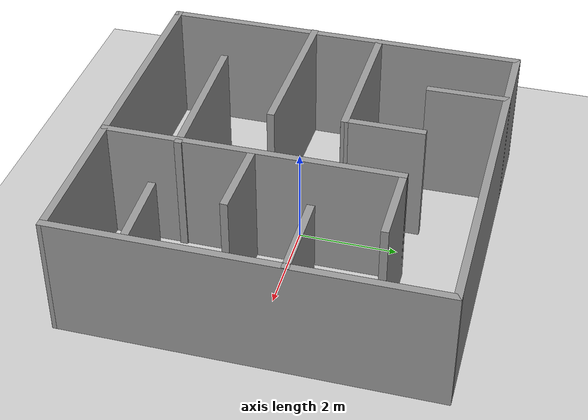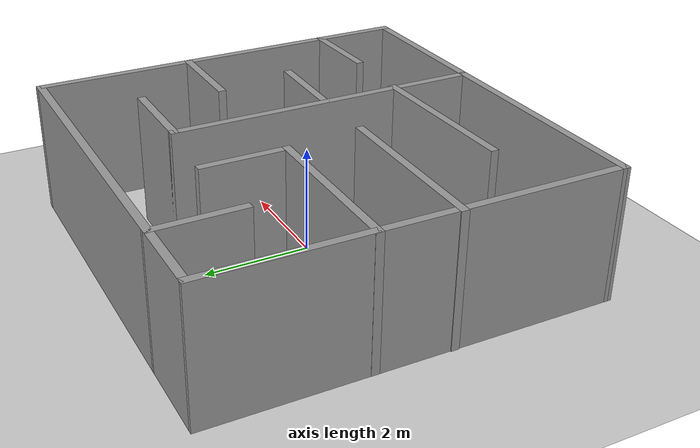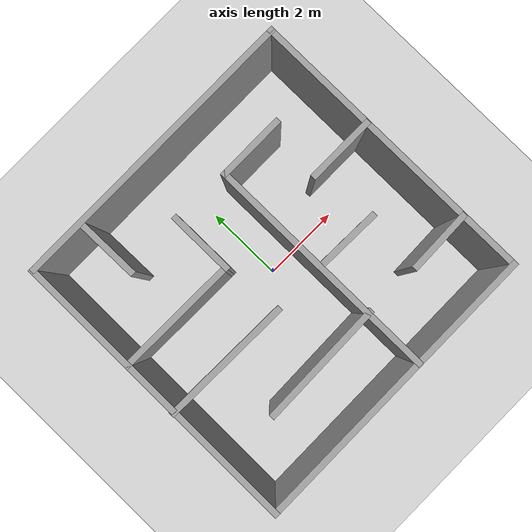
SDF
<sdf version="1.7">
 <world name="default">
  <light name="sun" type="directional">
   <pose>0 0 10 0 -0 0</pose>
   <diffuse>0.8 0.8 0.8 1</diffuse>
   <specular>0.2 0.2 0.2 1</specular>
   <attenuation>
    <range>1000</range>
    <constant>0.9</constant>
    <linear>0.01</linear>
    <quadratic>0.001</quadratic>
   </attenuation>
   <direction>-0.5 0.1 -0.9</direction>
   <spot><inner_angle>0</inner_angle><outer_angle>0</outer_angle><falloff>0</falloff></spot>
  </light>
  <model name="ground_plane">
   <static>1</static>
   <link name="link">
    <collision name="collision">
     <geometry><plane><normal>0 0 1</normal><size>100 100</size></plane></geometry>
     <surface><friction><ode><mu>100</mu><mu2>50</mu2></ode></friction></surface>
    </collision>
    <visual name="visual">
     <cast_shadows>0</cast_shadows>
     <geometry><plane><normal>0 0 1</normal><size>100 100</size></plane></geometry>
     <material>
      <script><uri>file://media/materials/scripts/gazebo.material</uri><name>Gazebo/Grey</name></script>
     </material>
    </visual>
   </link>
  </model>
  <gravity>0 0 -9.8</gravity>
  <magnetic_field>6e-06 2.3e-05 -4.2e-05</magnetic_field>
  <atmosphere type="adiabatic"/>
  <physics type="ode">
   <max_step_size>0.001</max_step_size>
   <real_time_factor>1</real_time_factor>
   <real_time_update_rate>1000</real_time_update_rate>
  </physics>
  <scene><ambient>0.4 0.4 0.4 1</ambient><background>0.7 0.7 0.7 1</background><shadows>1</shadows></scene>
  <audio><device>default</device></audio>
  <spherical_coordinates>
   <surface_model>EARTH_WGS84</surface_model>
   <latitude_deg>0</latitude_deg>
   <longitude_deg>0</longitude_deg>
   <elevation>0</elevation>
   <heading_deg>0</heading_deg>
  </spherical_coordinates>
  <model name="maze">
   <pose>-0.027163 -0.033715 0 0 -0 0</pose>
   <link name="Wall_0">
    <collision name="Wall_0_Collision">
     <geometry><box><size>7.49583 0.15 2.5</size></box></geometry>
     <pose>0 0 1.25 0 -0 0</pose>
    </collision>
    <visual name="Wall_0_Visual">
     <pose>0 0 1.25 0 -0 0</pose>
     <geometry><box><size>7.49583 0.15 2.5</size></box></geometry>
     <material>
      <script><uri>file://media/materials/scripts/gazebo.material</uri><name>Gazebo/Grey</name></script>
      <ambient>1 1 1 1</ambient>
     </material>
     <meta><layer>0</layer></meta>
    </visual>
    <pose>0.036636 3.69018 0 0 -0 0</pose>
   </link>
   <link name="Wall_1">
    <collision name="Wall_1_Collision">
     <geometry><box><size>7.5 0.15 2.5</size></box></geometry>
     <pose>0 0 1.25 0 -0 0</pose>
    </collision>
    <visual name="Wall_1_Visual">
     <pose>0 0 1.25 0 -0 0</pose>
     <geometry><box><size>7.5 0.15 2.5</size></box></geometry>
     <material>
      <script><uri>file://media/materials/scripts/gazebo.material</uri><name>Gazebo/Grey</name></script>
      <ambient>1 1 1 1</ambient>
     </material>
     <meta><layer>0</layer></meta>
    </visual>
    <pose>3.70955 0.015182 0 0 -0 -1.5708</pose>
   </link>
   <link name="Wall_11">
    <collision name="Wall_11_Collision">
     <geometry><box><size>6 0.15 2.5</size></box></geometry>
     <pose>0 0 1.25 0 -0 0</pose>
    </collision>
    <visual name="Wall_11_Visual">
     <pose>0 0 1.25 0 -0 0</pose>
     <geometry><box><size>6 0.15 2.5</size></box></geometry>
     <material>
      <script><uri>file://media/materials/scripts/gazebo.material</uri><name>Gazebo/Grey</name></script>
      <ambient>1 1 1 1</ambient>
     </material>
     <meta><layer>0</layer></meta>
    </visual>
    <pose>0.736621 -0.73183 0 0 -0 1.5708</pose>
   </link>
   <link name="Wall_12">
    <collision name="Wall_12_Collision">
     <geometry><box><size>1.75 0.15 2.5</size></box></geometry>
     <pose>0 0 1.25 0 -0 0</pose>
    </collision>
    <visual name="Wall_12_Visual">
     <pose>0 0 1.25 0 -0 0</pose>
     <geometry><box><size>1.75 0.15 2.5</size></box></geometry>
     <material>
      <script><uri>file://media/materials/scripts/gazebo.material</uri><name>Gazebo/Grey</name></script>
      <ambient>1 1 1 1</ambient>
     </material>
     <meta><layer>0</layer></meta>
    </visual>
    <pose>1.53662 2.19317 0 0 -0 0</pose>
   </link>
   <link name="Wall_14">
    <collision name="Wall_14_Collision">
     <geometry><box><size>1.67916 0.15 2.5</size></box></geometry>
     <pose>0 0 1.25 0 -0 0</pose>
    </collision>
    <visual name="Wall_14_Visual">
     <pose>0 0 1.25 0 -0 0</pose>
     <geometry><box><size>1.67916 0.15 2.5</size></box></geometry>
     <material>
      <script><uri>file://media/materials/scripts/gazebo.material</uri><name>Gazebo/Grey</name></script>
      <ambient>1 1 1 1</ambient>
     </material>
     <meta><layer>0</layer></meta>
    </visual>
    <pose>1.56128 -0.720249 0 0 -0 -0.02631</pose>
   </link>
   <link name="Wall_17">
    <collision name="Wall_17_Collision">
     <geometry><box><size>3.16811 0.15 2.5</size></box></geometry>
     <pose>0 0 1.25 0 -0 0</pose>
    </collision>
    <visual name="Wall_17_Visual">
     <pose>0 0 1.25 0 -0 0</pose>
     <geometry><box><size>3.16811 0.15 2.5</size></box></geometry>
     <material>
      <script><uri>file://media/materials/scripts/gazebo.material</uri><name>Gazebo/Grey</name></script>
      <ambient>1 1 1 1</ambient>
     </material>
     <meta><layer>0</layer></meta>
    </visual>
    <pose>-0.73167 -2.17848 0 0 -0 -3.1216</pose>
   </link>
   <link name="Wall_19">
    <collision name="Wall_19_Collision">
     <geometry><box><size>1.75 0.15 2.5</size></box></geometry>
     <pose>0 0 1.25 0 -0 0</pose>
    </collision>
    <visual name="Wall_19_Visual">
     <pose>0 0 1.25 0 -0 0</pose>
     <geometry><box><size>1.75 0.15 2.5</size></box></geometry>
     <material>
      <script><uri>file://media/materials/scripts/gazebo.material</uri><name>Gazebo/Grey</name></script>
      <ambient>1 1 1 1</ambient>
     </material>
     <meta><layer>0</layer></meta>
    </visual>
    <pose>2.89332 0.768156 0 0 -0 3.14159</pose>
   </link>
   <link name="Wall_2">
    <collision name="Wall_2_Collision">
     <geometry><box><size>7.56594 0.15 2.5</size></box></geometry>
     <pose>0 0 1.25 0 -0 0</pose>
    </collision>
    <visual name="Wall_2_Visual">
     <pose>0 0 1.25 0 -0 0</pose>
     <geometry><box><size>7.56594 0.15 2.5</size></box></geometry>
     <material>
      <script><uri>file://media/materials/scripts/gazebo.material</uri><name>Gazebo/Grey</name></script>
      <ambient>1 1 1 1</ambient>
     </material>
     <meta><layer>0</layer></meta>
    </visual>
    <pose>0.001656 -3.67522 0 0 -0 -3.13744</pose>
   </link>
   <link name="Wall_22">
    <collision name="Wall_22_Collision">
     <geometry><box><size>1.63895 0.15 2.5</size></box></geometry>
     <pose>0 0 1.25 0 -0 0</pose>
    </collision>
    <visual name="Wall_22_Visual">
     <pose>0 0 1.25 0 -0 0</pose>
     <geometry><box><size>1.63895 0.15 2.5</size></box></geometry>
     <material>
      <script><uri>file://media/materials/scripts/gazebo.material</uri><name>Gazebo/Grey</name></script>
      <ambient>1 1 1 1</ambient>
     </material>
     <meta><layer>0</layer></meta>
    </visual>
    <pose>2.94911 -2.16843 0 0 -0 -3.11457</pose>
   </link>
   <link name="Wall_24">
    <collision name="Wall_24_Collision">
     <geometry><box><size>3.2883 0.15 2.5</size></box></geometry>
     <pose>0 0 1.25 0 -0 0</pose>
    </collision>
    <visual name="Wall_24_Visual">
     <pose>0 0 1.25 0 -0 0</pose>
     <geometry><box><size>3.2883 0.15 2.5</size></box></geometry>
     <material>
      <script><uri>file://media/materials/scripts/gazebo.material</uri><name>Gazebo/Grey</name></script>
      <ambient>1 1 1 1</ambient>
     </material>
     <meta><layer>0</layer></meta>
    </visual>
    <pose>-2.13962 -0.669965 0 0 -0 -0.019228</pose>
   </link>
   <link name="Wall_3">
    <collision name="Wall_3_Collision">
     <geometry><box><size>7.53089 0.15 2.5</size></box></geometry>
     <pose>0 0 1.25 0 -0 0</pose>
    </collision>
    <visual name="Wall_3_Visual">
     <pose>0 0 1.25 0 -0 0</pose>
     <geometry><box><size>7.53089 0.15 2.5</size></box></geometry>
     <material>
      <script><uri>file://media/materials/scripts/gazebo.material</uri><name>Gazebo/Grey</name></script>
      <ambient>1 1 1 1</ambient>
     </material>
     <meta><layer>0</layer></meta>
    </visual>
    <pose>-3.68875 -0.000222 0 0 -0 1.56606</pose>
   </link>
   <link name="Wall_6">
    <collision name="Wall_6_Collision">
     <geometry><box><size>1.68912 0.15 2.5</size></box></geometry>
     <pose>0 0 1.25 0 -0 0</pose>
    </collision>
    <visual name="Wall_6_Visual">
     <pose>0 0 1.25 0 -0 0</pose>
     <geometry><box><size>1.68912 0.15 2.5</size></box></geometry>
     <material>
      <script><uri>file://media/materials/scripts/gazebo.material</uri><name>Gazebo/Grey</name></script>
      <ambient>1 1 1 1</ambient>
     </material>
     <meta><layer>0</layer></meta>
    </visual>
    <pose>-2.21084 2.92062 0 0 -0 -1.55943</pose>
   </link>
   <link name="Wall_8">
    <collision name="Wall_8_Collision">
     <geometry><box><size>3.141 0.15 2.5</size></box></geometry>
     <pose>0 0 1.25 0 -0 0</pose>
    </collision>
    <visual name="Wall_8_Visual">
     <pose>0 0 1.25 0 -0 0</pose>
     <geometry><box><size>3.141 0.15 2.5</size></box></geometry>
     <material>
      <script><uri>file://media/materials/scripts/gazebo.material</uri><name>Gazebo/Grey</name></script>
      <ambient>1 1 1 1</ambient>
     </material>
     <meta><layer>0</layer></meta>
    </visual>
    <pose>-2.19335 0.769341 0 0 -0 -0.011695</pose>
   </link>
   <link name="Wall_9">
    <collision name="Wall_9_Collision">
     <geometry><box><size>1.67174 0.15 2.5</size></box></geometry>
     <pose>0 0 1.25 0 -0 0</pose>
    </collision>
    <visual name="Wall_9_Visual">
     <pose>0 0 1.25 0 -0 0</pose>
     <geometry><box><size>1.67174 0.15 2.5</size></box></geometry>
     <material>
      <script><uri>file://media/materials/scripts/gazebo.material</uri><name>Gazebo/Grey</name></script>
      <ambient>1 1 1 1</ambient>
     </material>
     <meta><layer>0</layer></meta>
    </visual>
    <pose>-0.697947 1.51267 0 0 -0 1.5708</pose>
   </link>
   <static>1</static>
  </model>
 </world>
</sdf>
